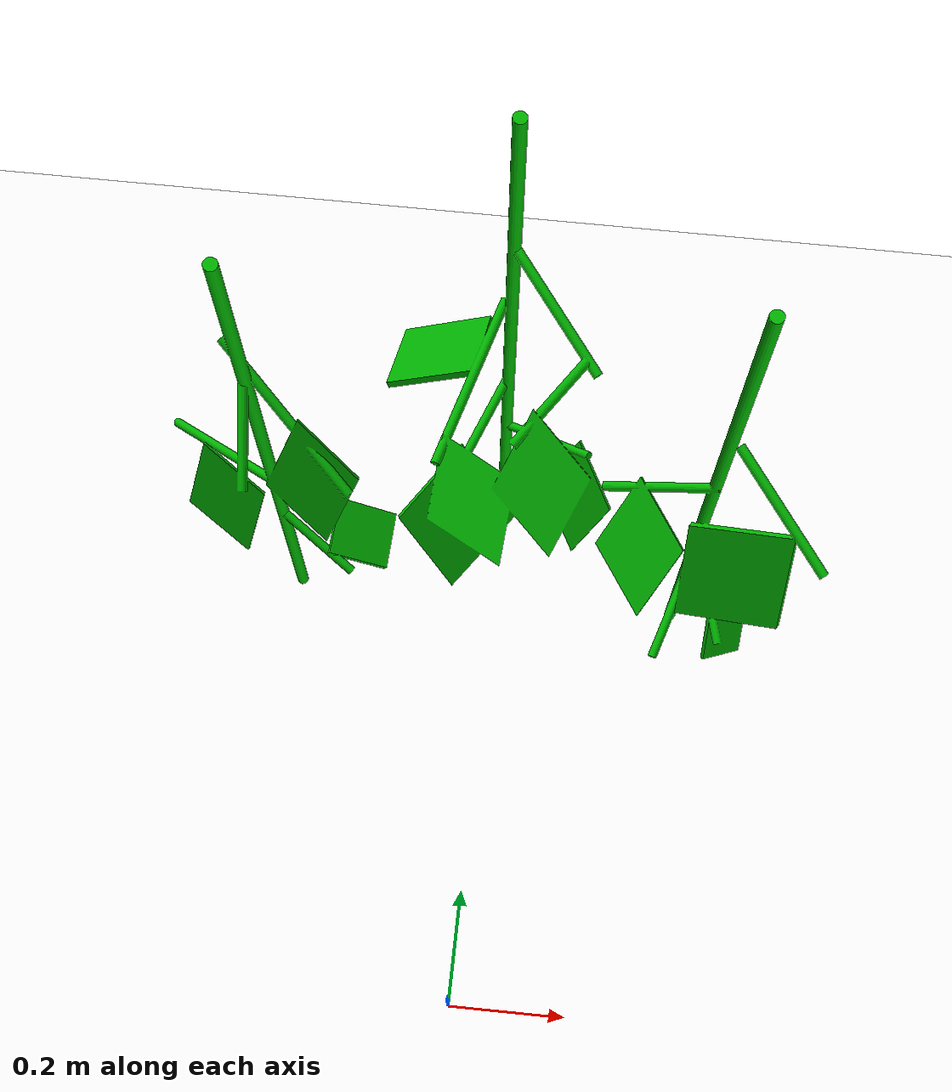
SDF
<?xml version="1.0" ?>
<sdf version="1.6">
  <world name="white_room">

    <!-- 光と背景（白っぽく） -->
    <scene>
      <ambient>0.9 0.9 0.9 1</ambient>
      <background>0.95 0.95 0.95 1</background>
    </scene>

    <include>
      <uri>model://sun</uri>
    </include>

    <model name="floor">
      <static>true</static>
      <link name="link">
        <collision name="collision">
          <geometry>
            <plane>
              <normal>0 0 1</normal>
              <size>10 10</size>
            </plane>
          </geometry>
        </collision>
        <visual name="visual">
          <geometry>
            <plane>
              <normal>0 0 1</normal>
              <size>10 10</size>
            </plane>
          </geometry>
          <material>
            <ambient>0.98 0.98 0.98 1</ambient>
            <diffuse>0.98 0.98 0.98 1</diffuse>
          </material>
        </visual>
      </link>
    </model>

    <include>
      <uri>model://abstract_plant</uri>
      <name>abstract_plant</name>
      <pose>0.0 0.9 0 0 0 1.57079632679</pose>
    </include>

  </world>
</sdf>

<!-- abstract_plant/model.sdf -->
<sdf version="1.6">
  <model name="abstract_plant">
    <static>true</static>

    <link name="plant_link">
      <!-- collision -->
      <collision name="collision">
        <geometry>
            <mesh>
            <uri>model://abstract_plant/meshes/abstract_plant.dae</uri>
            </mesh>
            <scale>1 1 1</scale>
        </geometry>
      </collision>

      <!-- visual -->
    <visual name="visual">
        <geometry>
            <mesh>
            <uri>model://abstract_plant/meshes/abstract_plant.dae</uri>
            </mesh>
            <scale>1 1 1</scale>
        </geometry>

        <material>
            <ambient>0 0.7 0 1</ambient>
            <diffuse>0 0.7 0 1</diffuse>
            <specular>0.1 0.1 0.1 1</specular>
        </material>
    </visual>

    </link>
  </model>
</sdf>
